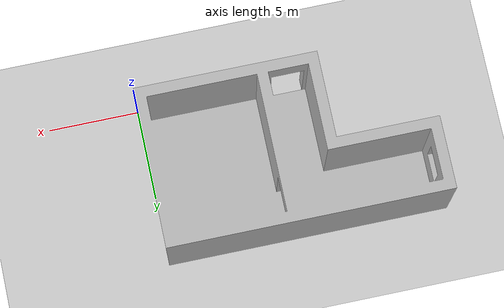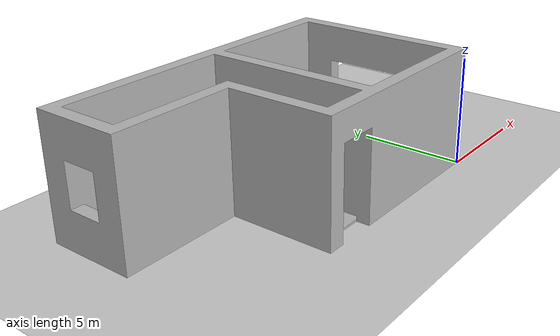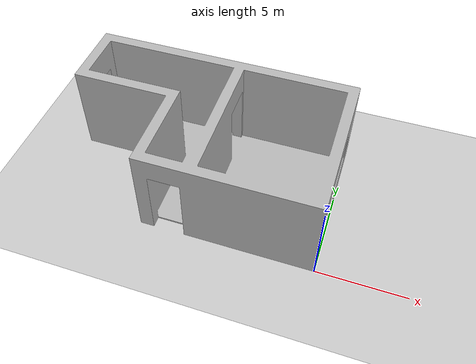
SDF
<?xml version="1.0" ?>
<sdf version="1.6">
  <world name="default">

  <plugin
  filename="gz-sim-physics-system"
  name="gz::sim::systems::Physics"/>

<plugin
  filename="gz-sim-user-commands-system"
  name="gz::sim::systems::UserCommands"/>

<plugin
  filename="gz-sim-scene-broadcaster-system"
  name="gz::sim::systems::SceneBroadcaster"/>

<plugin
  filename="gz-sim-sensors-system"
  name="gz::sim::systems::Sensors">
  <render_engine>ogre2</render_engine>
</plugin>

  <light type="directional" name="sun">
  <cast_shadows>true</cast_shadows>
  <pose>0 0 10 0 0 0</pose>
  <diffuse>0.8 0.8 0.8 1</diffuse>
  <specular>0.2 0.2 0.2 1</specular>
  <attenuation>
    <range>1000</range>
    <constant>0.9</constant>
    <linear>0.01</linear>
    <quadratic>0.001</quadratic>
  </attenuation>
  <direction>-0.5 0.1 -0.9</direction>
</light>

<model name="ground_plane">
  <static>true</static>
  <link name="link">
    <collision name="collision">
      <geometry>
        <plane>
          <normal>0 0 1</normal>
        </plane>
      </geometry>
    </collision>
    <visual name="visual">
      <geometry>
        <plane>
          <normal>0 0 1</normal>
          <size>100 100</size>
        </plane>
      </geometry>
      <material>
        <ambient>0.8 0.8 0.8 1</ambient>
        <diffuse>0.8 0.8 0.8 1</diffuse>
        <specular>0.8 0.8 0.8 1</specular>
      </material>
    </visual>
  </link>
</model>

    <model name="room_and_corridor_env">
      <static>true</static>

      <link name="room_link">

        <visual name="visual">
          <geometry>
            <mesh>
              <uri>file://../meshes/room_and_corridor_env.obj</uri>
              <scale>0.02 0.02 0.02</scale>
            </mesh>
          </geometry>
        </visual>

        <collision name="collision">
          <geometry>
            <mesh>
              <uri>file://../meshes/room_and_corridor_env.obj</uri>
              <scale>0.02 0.02 0.02</scale>
            </mesh>
          </geometry>
        </collision>

      </link>

    </model>

  </world>
</sdf>
